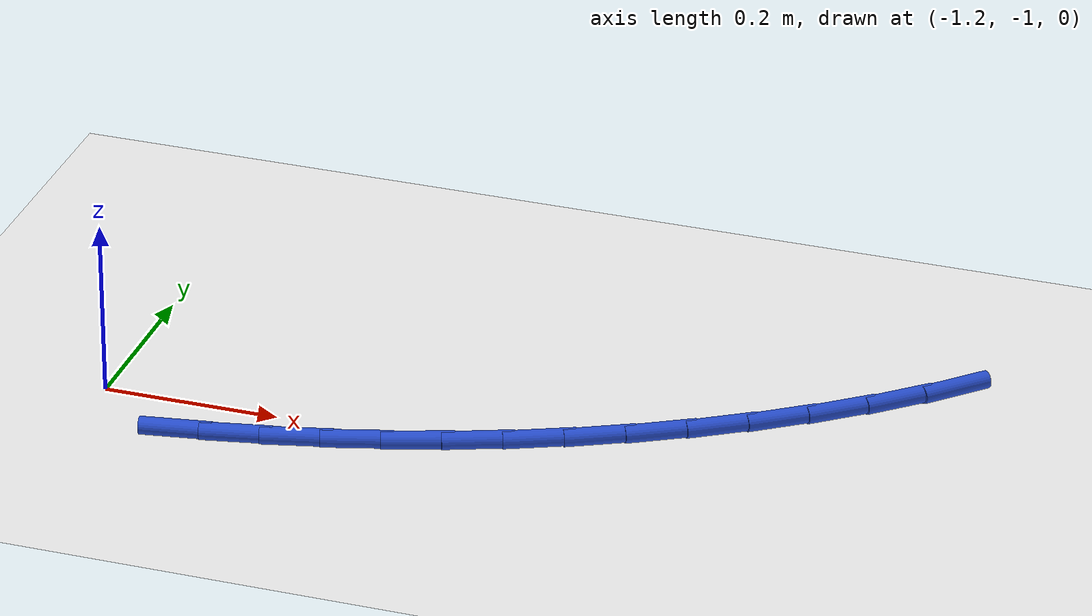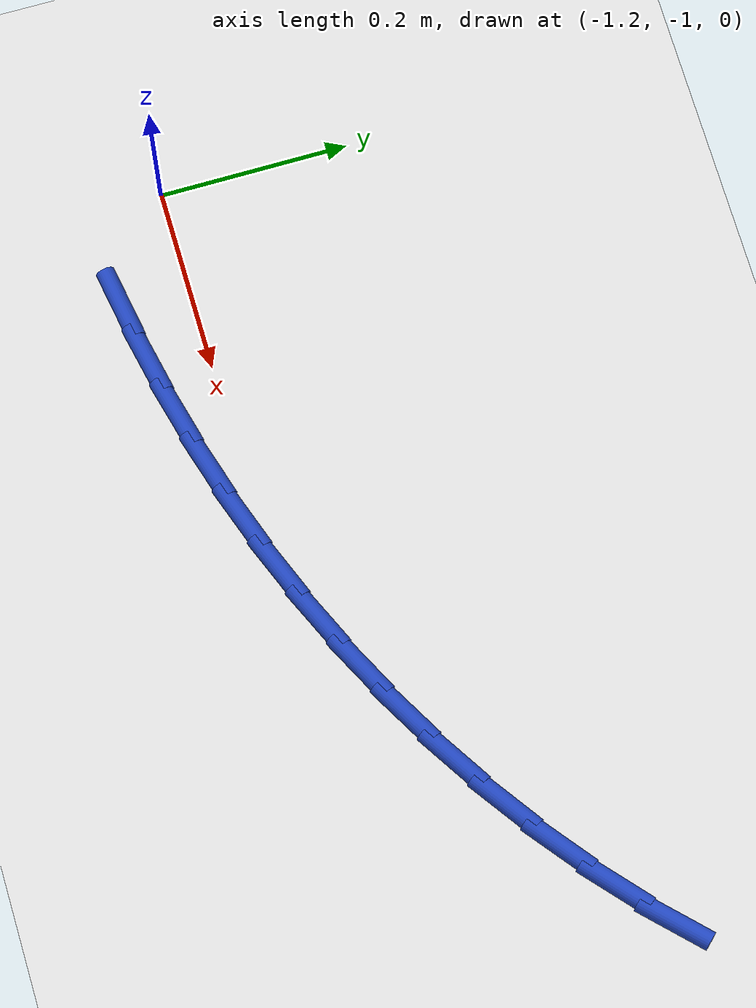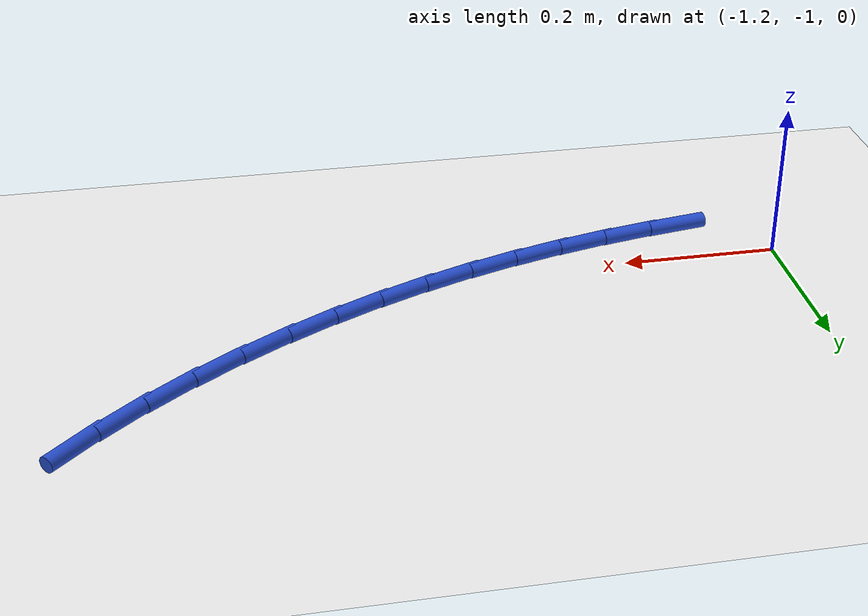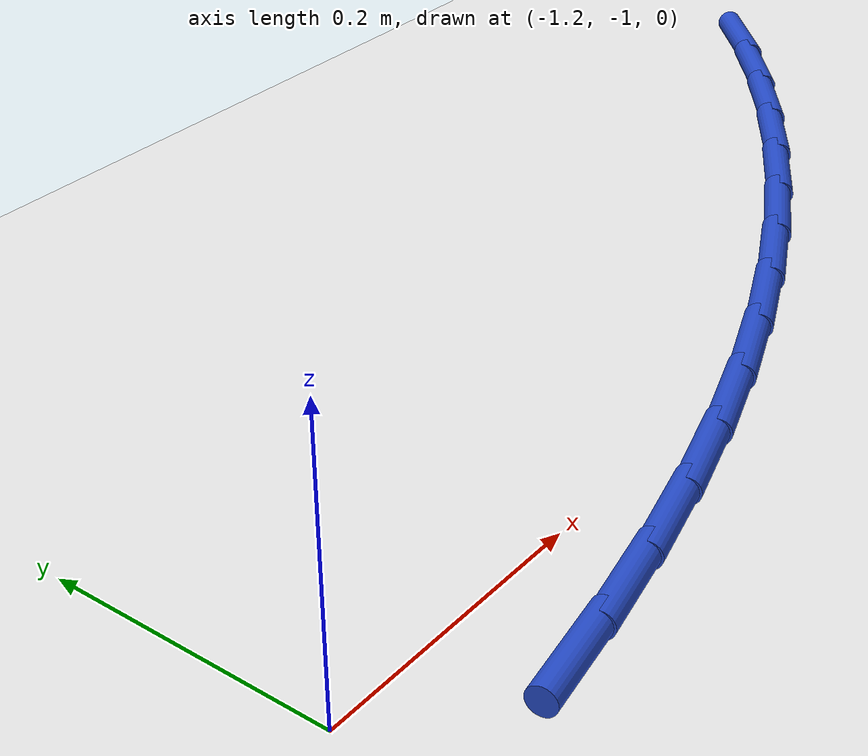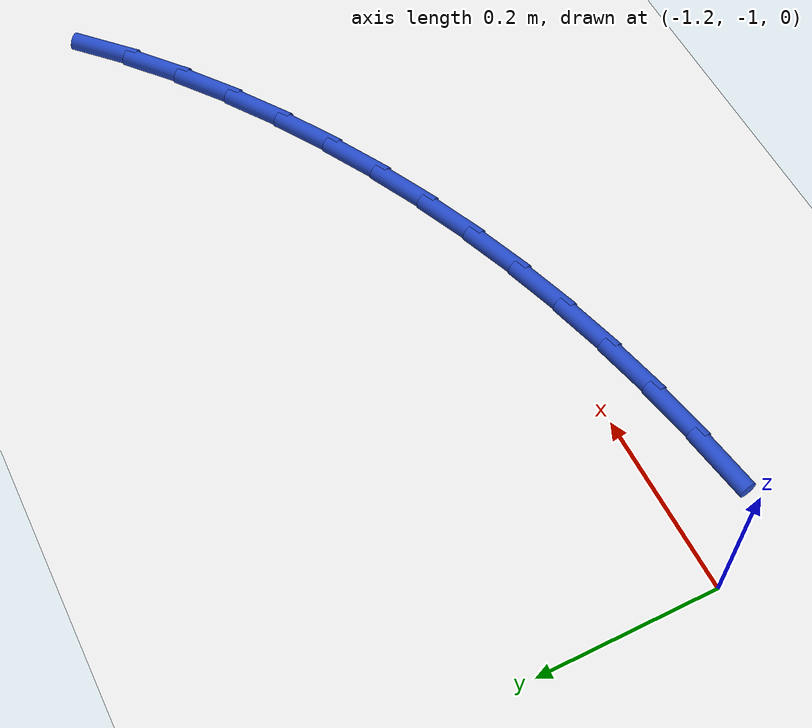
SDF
<sdf version="1.6">
 <world name="default">
  <model name="ground_plane">
   <static>1</static>
   <link name="link">
    <collision name="collision">
     <geometry><plane><normal>0 0 1</normal><size>100 100</size></plane></geometry>
     <surface><friction><ode><mu>100</mu><mu2>50</mu2></ode></friction></surface>
    </collision>
    <visual name="visual">
     <cast_shadows>0</cast_shadows>
     <geometry><plane><normal>0 0 1</normal><size>100 100</size></plane></geometry>
     <material>
      <script><uri>file://media/materials/scripts/gazebo.material</uri><name>Gazebo/WhiteGlow</name></script>
     </material>
    </visual>
   </link>
  </model>
  <model name="line">
   <link name="link_85">
    <pose>-1.0891973160037762 -1.07217746607451 0.01 0 1.57 0.1632876090253049</pose>
    <collision name="collision">
     <geometry><cylinder><radius>0.01</radius><length>0.08</length></cylinder></geometry>
    </collision>
    <visual name="visual">
     <material>
      <script><name>Gazebo/Blue</name><uri>file://media/materials/scripts/gazebo.material</uri></script>
     </material>
     <geometry><cylinder><radius>0.01</radius><length>0.08</length></cylinder></geometry>
    </visual>
   </link>
   <link name="link_86">
    <pose>-1.0235202394325842 -1.0613568726328146 0.01 0 1.57 0.2022064382304709</pose>
    <collision name="collision">
     <geometry><cylinder><radius>0.01</radius><length>0.08</length></cylinder></geometry>
    </collision>
    <visual name="visual">
     <material>
      <script><name>Gazebo/Blue</name><uri>file://media/materials/scripts/gazebo.material</uri></script>
     </material>
     <geometry><cylinder><radius>0.01</radius><length>0.08</length></cylinder></geometry>
    </visual>
   </link>
   <link name="link_87">
    <pose>-0.9588166070721025 -1.0480920993124347 0.01 0 1.57 0.24286306969199906</pose>
    <collision name="collision">
     <geometry><cylinder><radius>0.01</radius><length>0.08</length></cylinder></geometry>
    </collision>
    <visual name="visual">
     <material>
      <script><name>Gazebo/Blue</name><uri>file://media/materials/scripts/gazebo.material</uri></script>
     </material>
     <geometry><cylinder><radius>0.01</radius><length>0.08</length></cylinder></geometry>
    </visual>
   </link>
   <link name="link_88">
    <pose>-0.8950616203908776 -1.0322965867077756 0.01 0 1.57 0.2850706524220335</pose>
    <collision name="collision">
     <geometry><cylinder><radius>0.01</radius><length>0.08</length></cylinder></geometry>
    </collision>
    <visual name="visual">
     <material>
      <script><name>Gazebo/Blue</name><uri>file://media/materials/scripts/gazebo.material</uri></script>
     </material>
     <geometry><cylinder><radius>0.01</radius><length>0.08</length></cylinder></geometry>
    </visual>
   </link>
   <link name="link_89">
    <pose>-0.8322304808574519 -1.013883775413241 0.01 0 1.57 0.328603170979427</pose>
    <collision name="collision">
     <geometry><cylinder><radius>0.01</radius><length>0.08</length></cylinder></geometry>
    </collision>
    <visual name="visual">
     <material>
      <script><name>Gazebo/Blue</name><uri>file://media/materials/scripts/gazebo.material</uri></script>
     </material>
     <geometry><cylinder><radius>0.01</radius><length>0.08</length></cylinder></geometry>
    </visual>
   </link>
   <link name="link_90">
    <pose>-0.7702983899403707 -0.9927671060232364 0.01 0 1.57 0.3731991649879757</pose>
    <collision name="collision">
     <geometry><cylinder><radius>0.01</radius><length>0.08</length></cylinder></geometry>
    </collision>
    <visual name="visual">
     <material>
      <script><name>Gazebo/Blue</name><uri>file://media/materials/scripts/gazebo.material</uri></script>
     </material>
     <geometry><cylinder><radius>0.01</radius><length>0.08</length></cylinder></geometry>
    </visual>
   </link>
   <link name="link_91">
    <pose>-0.709240549108177 -0.9688600191321654 0.01 0 1.57 0.41856795518042283</pose>
    <collision name="collision">
     <geometry><cylinder><radius>0.01</radius><length>0.08</length></cylinder></geometry>
    </collision>
    <visual name="visual">
     <material>
      <script><name>Gazebo/Blue</name><uri>file://media/materials/scripts/gazebo.material</uri></script>
     </material>
     <geometry><cylinder><radius>0.01</radius><length>0.08</length></cylinder></geometry>
    </visual>
   </link>
   <link name="link_92">
    <pose>-0.6490321598294162 -0.9420759553344336 0.01 0 1.57 0.46439813176118955</pose>
    <collision name="collision">
     <geometry><cylinder><radius>0.01</radius><length>0.08</length></cylinder></geometry>
    </collision>
    <visual name="visual">
     <material>
      <script><name>Gazebo/Blue</name><uri>file://media/materials/scripts/gazebo.material</uri></script>
     </material>
     <geometry><cylinder><radius>0.01</radius><length>0.08</length></cylinder></geometry>
    </visual>
   </link>
   <link name="link_93">
    <pose>-0.5896484235726306 -0.9123283552244444 0.01 0 1.57 0.510536970559434</pose>
    <collision name="collision">
     <geometry><cylinder><radius>0.01</radius><length>0.08</length></cylinder></geometry>
    </collision>
    <visual name="visual">
     <material>
      <script><name>Gazebo/Blue</name><uri>file://media/materials/scripts/gazebo.material</uri></script>
     </material>
     <geometry><cylinder><radius>0.01</radius><length>0.08</length></cylinder></geometry>
    </visual>
   </link>
   <link name="link_94">
    <pose>-0.5311230684680662 -0.8795504162095429 0.01 0 1.57 0.5578647839951038</pose>
    <collision name="collision">
     <geometry><cylinder><radius>0.01</radius><length>0.08</length></cylinder></geometry>
    </collision>
    <visual name="visual">
     <material>
      <script><name>Gazebo/Blue</name><uri>file://media/materials/scripts/gazebo.material</uri></script>
     </material>
     <geometry><cylinder><radius>0.01</radius><length>0.08</length></cylinder></geometry>
    </visual>
   </link>
   <link name="link_95">
    <pose>-0.4737930779168139 -0.8437777054117416 0.01 0 1.57 0.6072116894035031</pose>
    <collision name="collision">
     <geometry><cylinder><radius>0.01</radius><length>0.08</length></cylinder></geometry>
    </collision>
    <visual name="visual">
     <material>
      <script><name>Gazebo/Blue</name><uri>file://media/materials/scripts/gazebo.material</uri></script>
     </material>
     <geometry><cylinder><radius>0.01</radius><length>0.08</length></cylinder></geometry>
    </visual>
   </link>
   <link name="link_96">
    <pose>-0.41809335787072793 -0.8050788456145564 0.01 0 1.57 0.6591893327725215</pose>
    <collision name="collision">
     <geometry><cylinder><radius>0.01</radius><length>0.08</length></cylinder></geometry>
    </collision>
    <visual name="visual">
     <material>
      <script><name>Gazebo/Blue</name><uri>file://media/materials/scripts/gazebo.material</uri></script>
     </material>
     <geometry><cylinder><radius>0.01</radius><length>0.08</length></cylinder></geometry>
    </visual>
   </link>
   <link name="link_97">
    <pose>-0.36445886285084167 -0.7635224759969723 0.01 0 1.57 0.7144126203139027</pose>
    <collision name="collision">
     <geometry><cylinder><radius>0.01</radius><length>0.08</length></cylinder></geometry>
    </collision>
    <visual name="visual">
     <material>
      <script><name>Gazebo/Blue</name><uri>file://media/materials/scripts/gazebo.material</uri></script>
     </material>
     <geometry><cylinder><radius>0.01</radius><length>0.08</length></cylinder></geometry>
    </visual>
   </link>
   <link name="link_98">
    <pose>-0.3133245473781887 -0.7191772357379752 0.01 0 1.57 0.7734980920725546</pose>
    <collision name="collision">
     <geometry><cylinder><radius>0.01</radius><length>0.08</length></cylinder></geometry>
    </collision>
    <visual name="visual">
     <material>
      <script><name>Gazebo/Blue</name><uri>file://media/materials/scripts/gazebo.material</uri></script>
     </material>
     <geometry><cylinder><radius>0.01</radius><length>0.08</length></cylinder></geometry>
    </visual>
   </link>
  </model>
 </world>
</sdf>
